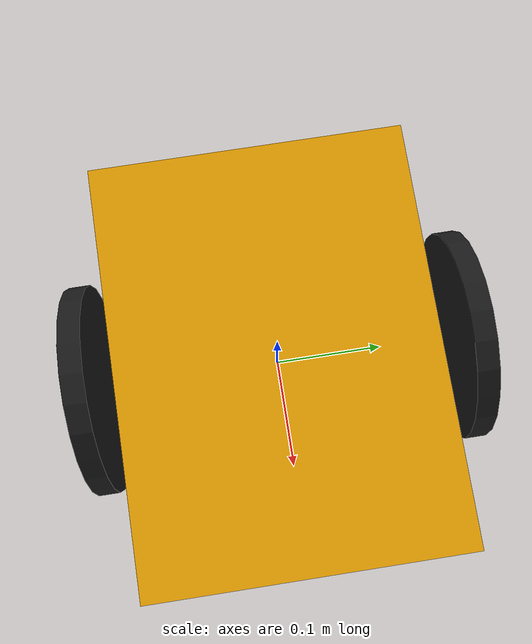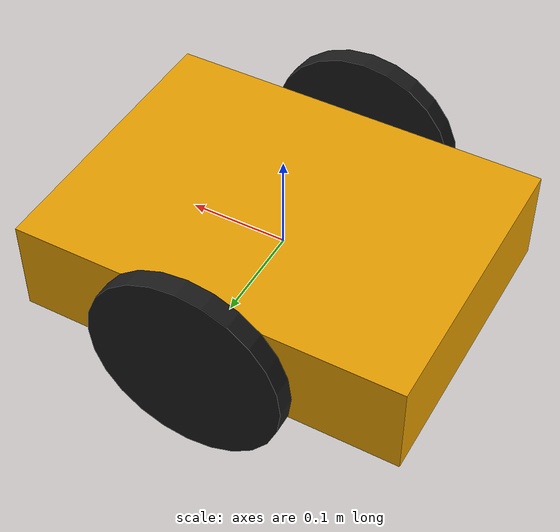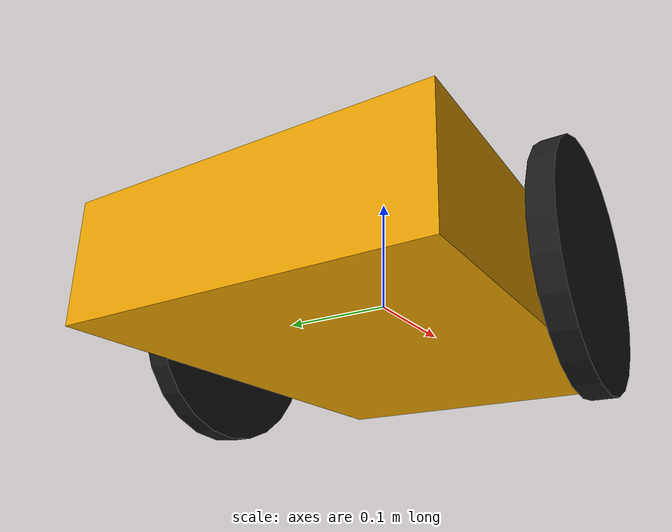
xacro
<?xml version="1.0"?>
<robot name="Transformer_1" xmlns:xacro="http://www.ros.org/wiki/xacro">

  <!-- Base -->
  <link name="base_link">
    <visual>
      <geometry>
        <box size="0.4 0.3 0.1"/>
      </geometry>
    </visual>
    <collision>
      <geometry>
        <box size="0.4 0.3 0.1"/>
      </geometry>
    </collision>
    <inertial>
      <mass value="5.0"/>
      <origin xyz="0 0 0"/>
      <inertia ixx="0.1" iyy="0.1" izz="0.1"
               ixy="0.0" ixz="0.0" iyz="0.0"/>
    </inertial>
  </link>

  <link name="left_wheel">
    <visual>
        <origin rpy="1.5708 0 0"/>
        <geometry>
        <cylinder radius="0.1" length="0.02"/>
        </geometry>
        <material name="black">
        <color rgba="0.1 0.1 0.1 1.0"/>
        </material>
    </visual>
  </link>

  <!-- Right Wheel -->
  <link name="right_wheel">
    <visual>
        <origin rpy="1.5708 0 0"/>
        <geometry>
        <cylinder radius="0.1" length="0.02"/>
        </geometry>
        <material name="black">
        <color rgba="0.1 0.1 0.1 1.0"/>
        </material>
    </visual>
  </link>

  <!-- Joints -->
<joint name="left_wheel_joint" type="continuous">
  <parent link="base_link"/>
  <child link="left_wheel"/>
  <origin xyz="0 0.175 0"/>
  <axis xyz="0 1 0"/>
</joint>

  <joint name="right_wheel_joint" type="continuous">
    <parent link="base_link"/>
    <child link="right_wheel"/>
    <origin xyz="0 -0.175 0"/>
    <axis xyz="0 1 0"/><?xml version="1.0"?>
<robot name="Transformer_1" xmlns:xacro="http://www.ros.org/wiki/xacro">

  <!-- Base -->
  <link name="base_link">
    <visual>
      <geometry>
        <box size="0.4 0.3 0.1"/>
      </geometry>
    </visual>
    <collision>
      <geometry>
        <box size="0.4 0.3 0.1"/>
      </geometry>
    </collision>
    <inertial>
      <mass value="5.0"/>
      <origin xyz="0 0 0"/>
      <inertia ixx="0.1" iyy="0.1" izz="0.1"
               ixy="0.0" ixz="0.0" iyz="0.0"/>
    </inertial>
  </link>

  <!-- Left Wheel -->
  <link name="left_wheel">
    <visual>
        <origin rpy="1.5708 0 0"/>
        <geometry>
        <cylinder radius="0.1" length="0.02"/>
        </geometry>
        <material name="black">
        <color rgba="0.1 0.1 0.1 1.0"/>
        </material>
    </visual>
  </link>

  <!-- Right Wheel -->
  <link name="right_wheel">
    <visual>
        <origin rpy="1.5708 0 0"/>
        <geometry>
        <cylinder radius="0.1" length="0.02"/>
        </geometry>
        <material name="black">
        <color rgba="0.1 0.1 0.1 1.0"/>
        </material>
    </visual>
  </link>

  <!-- Joints -->
<joint name="left_wheel_joint" type="continuous">
  <parent link="base_link"/>
  <child link="left_wheel"/>
  <origin xyz="0 0.175 0"/>
  <axis xyz="0 1 0"/>
</joint>

  <joint name="right_wheel_joint" type="continuous">
    <parent link="base_link"/>
    <child link="right_wheel"/>
    <origin xyz="0 -0.175 0"/>
    <axis xyz="0 1 0"/>
  </joint>

<gazebo>
  <plugin
    filename="libgz_ros2_control-system.so"
    name="gz_ros2_control::GazeboSystem">
  </plugin>
</gazebo>

</robot>

  </joint>

<gazebo>
  <plugin
    filename="libgz_ros2_control-system.so"
    name="gz_ros2_control::GazeboSystem">
  </plugin>
</gazebo>

</robot>
